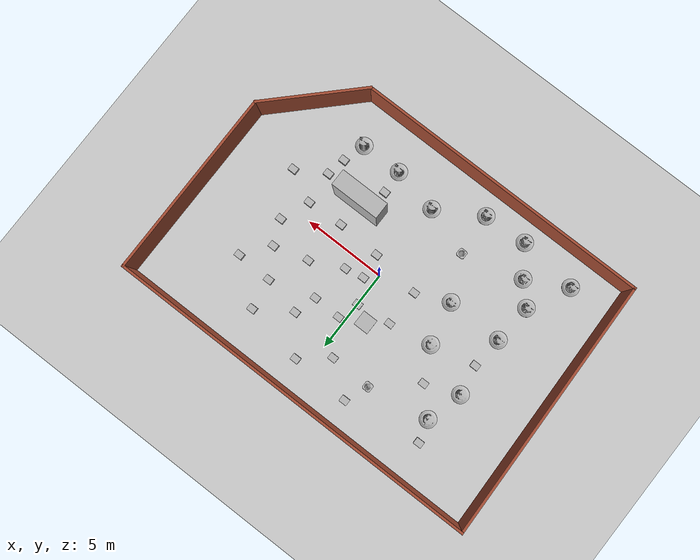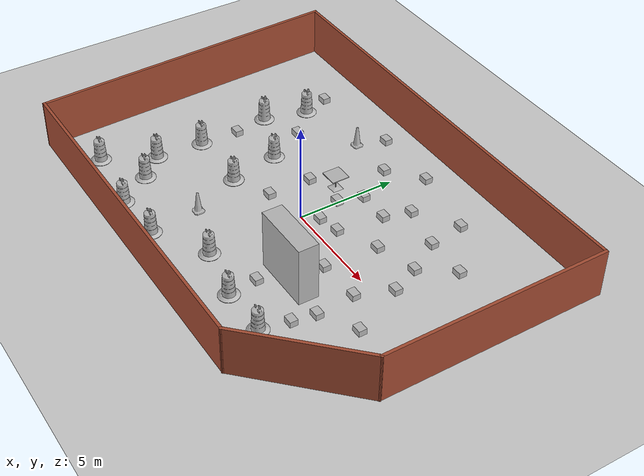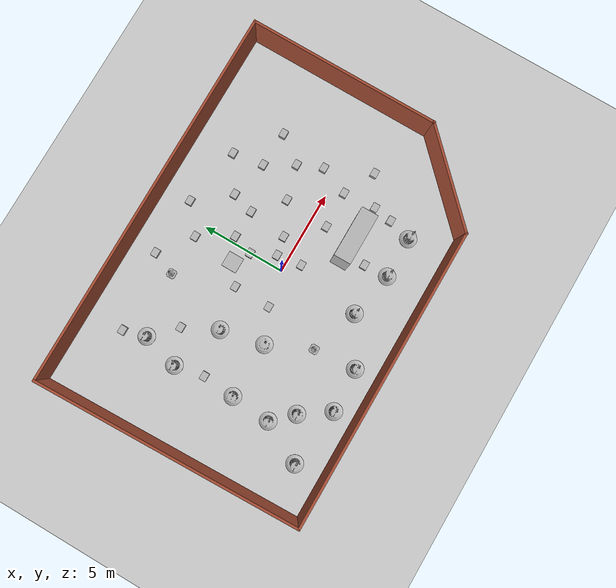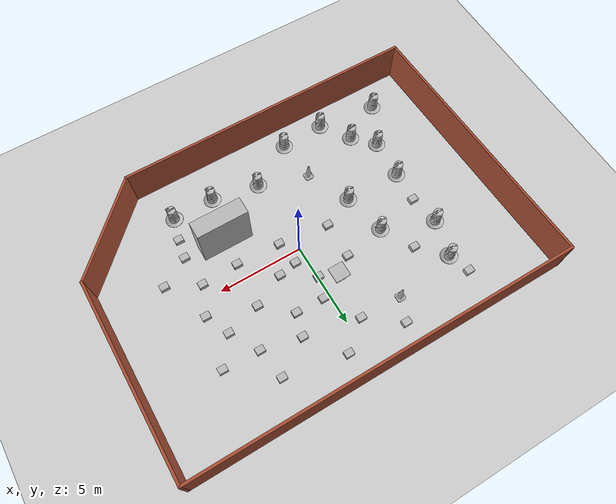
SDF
<sdf version="1.7">
 <world name="default">
  <light name="sun" type="directional">
   <pose>0 0 10 0 -0 0</pose>
   <diffuse>0.8 0.8 0.8 1</diffuse>
   <specular>0.2 0.2 0.2 1</specular>
   <attenuation>
    <range>1000</range>
    <constant>0.9</constant>
    <linear>0.01</linear>
    <quadratic>0.001</quadratic>
   </attenuation>
   <direction>-0.5 0.1 -0.9</direction>
   <spot><inner_angle>0</inner_angle><outer_angle>0</outer_angle><falloff>0</falloff></spot>
  </light>
  <model name="ground_plane">
   <static>1</static>
   <link name="link">
    <collision name="collision">
     <geometry><plane><normal>0 0 1</normal><size>100 100</size></plane></geometry>
     <surface>
      <contact><collide_bitmask>65535</collide_bitmask></contact>
      <friction><ode><mu>100</mu><mu2>50</mu2></ode></friction>
     </surface>
    </collision>
    <visual name="visual">
     <cast_shadows>0</cast_shadows>
     <geometry><plane><normal>0 0 1</normal><size>100 100</size></plane></geometry>
     <material>
      <script><uri>file://media/materials/scripts/gazebo.material</uri><name>Gazebo/Grey</name></script>
     </material>
    </visual>
   </link>
  </model>
  <gravity>0 0 -9.8</gravity>
  <magnetic_field>6e-06 2.3e-05 -4.2e-05</magnetic_field>
  <atmosphere type="adiabatic"/>
  <physics type="ode">
   <max_step_size>0.001</max_step_size>
   <real_time_factor>1</real_time_factor>
   <real_time_update_rate>1000</real_time_update_rate>
  </physics>
  <scene><ambient>0.4 0.4 0.4 1</ambient><background>0.7 0.7 0.7 1</background><shadows>1</shadows></scene>
  <spherical_coordinates>
   <surface_model>EARTH_WGS84</surface_model>
   <latitude_deg>0</latitude_deg>
   <longitude_deg>0</longitude_deg>
   <elevation>0</elevation>
   <heading_deg>0</heading_deg>
  </spherical_coordinates>
  <model name="small_room">
   <pose>-0.38646 0.24245 0 0 -0 0</pose>
   <link name="Wall_51">
    <collision name="Wall_51_Collision">
     <geometry><box><size>18 0.15 2.5</size></box></geometry>
     <pose>0 0 1.25 0 -0 0</pose>
    </collision>
    <visual name="Wall_51_Visual">
     <pose>0 0 1.25 0 -0 0</pose>
     <geometry><box><size>18 0.15 2.5</size></box></geometry>
     <material>
      <script><uri>file://media/materials/scripts/gazebo.material</uri><name>Gazebo/Bricks</name></script>
      <ambient>1 1 1 1</ambient>
     </material>
     <meta><layer>0</layer></meta>
    </visual>
    <pose>-2.00447 -7.90572 0 0 -0 0</pose>
   </link>
   <link name="Wall_52">
    <collision name="Wall_52_Collision">
     <geometry><box><size>6.5 0.15 2.5</size></box></geometry>
     <pose>0 0 1.25 0 -0 0</pose>
    </collision>
    <visual name="Wall_52_Visual">
     <pose>0 0 1.25 0 -0 0</pose>
     <geometry><box><size>6.5 0.15 2.5</size></box></geometry>
     <material>
      <script><uri>file://media/materials/scripts/gazebo.material</uri><name>Gazebo/Bricks</name></script>
      <ambient>1 1 1 1</ambient>
     </material>
     <meta><layer>0</layer></meta>
    </visual>
    <pose>9.16559 -5.66065 0 0 -0 0.785398</pose>
   </link>
   <link name="Wall_54">
    <collision name="Wall_54_Collision">
     <geometry><box><size>11.5 0.15 2.5</size></box></geometry>
     <pose>0 0 1.25 0 -0 0</pose>
    </collision>
    <visual name="Wall_54_Visual">
     <pose>0 0 1.25 0 -0 0</pose>
     <geometry><box><size>11.5 0.15 2.5</size></box></geometry>
     <material>
      <script><uri>file://media/materials/scripts/gazebo.material</uri><name>Gazebo/Bricks</name></script>
      <ambient>1 1 1 1</ambient>
     </material>
     <meta><layer>0</layer></meta>
    </visual>
    <pose>11.4107 2.25941 0 0 -0 1.5708</pose>
   </link>
   <link name="Wall_55">
    <collision name="Wall_55_Collision">
     <geometry><box><size>23 0.15 2.5</size></box></geometry>
     <pose>0 0 1.25 0 -0 0</pose>
    </collision>
    <visual name="Wall_55_Visual">
     <pose>0 0 1.25 0 -0 0</pose>
     <geometry><box><size>23 0.15 2.5</size></box></geometry>
     <material>
      <script><uri>file://media/materials/scripts/gazebo.material</uri><name>Gazebo/Bricks</name></script>
      <ambient>1 1 1 1</ambient>
     </material>
     <meta><layer>0</layer></meta>
    </visual>
    <pose>-0.014346 7.93441 0 0 -0 3.14159</pose>
   </link>
   <link name="Wall_56">
    <collision name="Wall_56_Collision">
     <geometry><box><size>15.9983 0.15 2.5</size></box></geometry>
     <pose>0 0 1.25 0 -0 0</pose>
    </collision>
    <visual name="Wall_56_Visual">
     <pose>0 0 1.25 0 -0 0</pose>
     <geometry><box><size>15.9983 0.15 2.5</size></box></geometry>
     <material>
      <script><uri>file://media/materials/scripts/gazebo.material</uri><name>Gazebo/Bricks</name></script>
      <ambient>1 1 1 1</ambient>
     </material>
     <meta><layer>0</layer></meta>
    </visual>
    <pose>-11.1844 0.014346 0 0 -0 -1.53862</pose>
   </link>
   <static>1</static>
  </model>
  <model name="brick_box_3x1x3">
   <static>1</static>
   <link name="chassis">
    <pose>0 0 1.5 0 -0 0</pose>
    <collision name="collision"><geometry><box><size>3 1 3</size></box></geometry></collision>
    <visual name="visual">
     <geometry><mesh><uri>model://brick_box_3x1x3/meshes/simple_box.dae</uri><scale>3 1 3</scale></mesh></geometry>
     <material>
      <script>
       <uri>model://brick_box_3x1x3/materials/scripts</uri>
       <uri>model://brick_box_3x1x3/materials/textures</uri>
       <name>BrickBox/Diffuse</name>
      </script>
     </material>
    </visual>
   </link>
   <pose>3.36244 -2.59922 0 0 -0 0</pose>
  </model>
  <model name="cardboard_box">
   <pose>3.67388 1.77519 0.149 0 -0 0</pose>
   <link name="link">
    <inertial>
     <mass>2</mass>
     <inertia>
      <ixx>0.0416667</ixx>
      <ixy>0</ixy>
      <ixz>0</ixz>
      <iyy>0.0566667</iyy>
      <iyz>0</iyz>
      <izz>0.0683333</izz>
     </inertia>
    </inertial>
    <collision name="collision">
     <geometry><box><size>0.5 0.4 0.3</size></box></geometry>
     <surface>
      <friction><ode><mu>1</mu><mu2>1</mu2></ode></friction>
      <contact><ode><kp>1e+07</kp><kd>1</kd><min_depth>0.001</min_depth><max_vel>0.1</max_vel></ode></contact>
     </surface>
    </collision>
    <visual name="visual">
     <pose>0 0 -0.15 0 -0 0</pose>
     <geometry>
      <mesh><uri>model://cardboard_box/meshes/cardboard_box.dae</uri><scale>1.25932 1.00745 0.755591</scale></mesh>
     </geometry>
    </visual>
   </link>
  </model>
  <model name="cardboard_box_clone">
   <pose>2.44939 4.51131 0.149 0 -0 0</pose>
   <link name="link">
    <inertial>
     <mass>2</mass>
     <inertia>
      <ixx>0.0416667</ixx>
      <ixy>0</ixy>
      <ixz>0</ixz>
      <iyy>0.0566667</iyy>
      <iyz>0</iyz>
      <izz>0.0683333</izz>
     </inertia>
    </inertial>
    <collision name="collision">
     <geometry><box><size>0.5 0.4 0.3</size></box></geometry>
     <surface>
      <friction><ode><mu>1</mu><mu2>1</mu2></ode></friction>
      <contact><ode><kp>1e+07</kp><kd>1</kd><min_depth>0.001</min_depth><max_vel>0.1</max_vel></ode></contact>
     </surface>
    </collision>
    <visual name="visual">
     <pose>0 0 -0.15 0 -0 0</pose>
     <geometry>
      <mesh><uri>model://cardboard_box/meshes/cardboard_box.dae</uri><scale>1.25932 1.00745 0.755591</scale></mesh>
     </geometry>
    </visual>
   </link>
  </model>
  <model name="cardboard_box_clone_0">
   <pose>-0.781206 5.20718 0.149 0 -0 0</pose>
   <link name="link">
    <inertial>
     <mass>2</mass>
     <inertia>
      <ixx>0.0416667</ixx>
      <ixy>0</ixy>
      <ixz>0</ixz>
      <iyy>0.0566667</iyy>
      <iyz>0</iyz>
      <izz>0.0683333</izz>
     </inertia>
    </inertial>
    <collision name="collision">
     <geometry><box><size>0.5 0.4 0.3</size></box></geometry>
     <surface>
      <friction><ode><mu>1</mu><mu2>1</mu2></ode></friction>
      <contact><ode><kp>1e+07</kp><kd>1</kd><min_depth>0.001</min_depth><max_vel>0.1</max_vel></ode></contact>
     </surface>
    </collision>
    <visual name="visual">
     <pose>0 0 -0.15 0 -0 0</pose>
     <geometry>
      <mesh><uri>model://cardboard_box/meshes/cardboard_box.dae</uri><scale>1.25932 1.00745 0.755591</scale></mesh>
     </geometry>
    </visual>
   </link>
  </model>
  <model name="cardboard_box_clone_1">
   <pose>6.91377 3.89397 0.149 0 -0 0</pose>
   <link name="link">
    <inertial>
     <mass>2</mass>
     <inertia>
      <ixx>0.0416667</ixx>
      <ixy>0</ixy>
      <ixz>0</ixz>
      <iyy>0.0566667</iyy>
      <iyz>0</iyz>
      <izz>0.0683333</izz>
     </inertia>
    </inertial>
    <collision name="collision">
     <geometry><box><size>0.5 0.4 0.3</size></box></geometry>
     <surface>
      <friction><ode><mu>1</mu><mu2>1</mu2></ode></friction>
      <contact><ode><kp>1e+07</kp><kd>1</kd><min_depth>0.001</min_depth><max_vel>0.1</max_vel></ode></contact>
     </surface>
    </collision>
    <visual name="visual">
     <pose>0 0 -0.15 0 -0 0</pose>
     <geometry>
      <mesh><uri>model://cardboard_box/meshes/cardboard_box.dae</uri><scale>1.25932 1.00745 0.755591</scale></mesh>
     </geometry>
    </visual>
   </link>
  </model>
  <model name="cardboard_box_clone_2">
   <pose>7.5452 -1.77727 0.149 0 -0 0</pose>
   <link name="link">
    <inertial>
     <mass>2</mass>
     <inertia>
      <ixx>0.0416667</ixx>
      <ixy>0</ixy>
      <ixz>0</ixz>
      <iyy>0.0566667</iyy>
      <iyz>0</iyz>
      <izz>0.0683333</izz>
     </inertia>
    </inertial>
    <collision name="collision">
     <geometry><box><size>0.5 0.4 0.3</size></box></geometry>
     <surface>
      <friction><ode><mu>1</mu><mu2>1</mu2></ode></friction>
      <contact><ode><kp>1e+07</kp><kd>1</kd><min_depth>0.001</min_depth><max_vel>0.1</max_vel></ode></contact>
     </surface>
    </collision>
    <visual name="visual">
     <pose>0 0 -0.15 0 -0 0</pose>
     <geometry>
      <mesh><uri>model://cardboard_box/meshes/cardboard_box.dae</uri><scale>1.25932 1.00745 0.755591</scale></mesh>
     </geometry>
    </visual>
   </link>
  </model>
  <model name="cafe_table">
   <static>1</static>
   <link name="link">
    <collision name="surface">
     <pose>0 0 0.755 0 -0 0</pose>
     <geometry><box><size>0.913 0.913 0.04</size></box></geometry>
    </collision>
    <collision name="column">
     <pose>0 0 0.37 0 -0 0</pose>
     <geometry><box><size>0.042 0.042 0.74</size></box></geometry>
    </collision>
    <collision name="base">
     <pose>0 0 0.02 0 -0 0</pose>
     <geometry><box><size>0.56 0.56 0.04</size></box></geometry>
    </collision>
    <visual name="visual">
     <geometry><mesh><uri>model://cafe_table/meshes/cafe_table.dae</uri></mesh></geometry>
    </visual>
   </link>
   <pose>-1.01377 2.56002 0 0 -0 0</pose>
  </model>
  <model name="Construction Cone">
   <link name="link">
    <collision name="collision">
     <geometry>
      <mesh><scale>10 10 10</scale><uri>model://construction_cone/meshes/construction_cone.dae</uri></mesh>
     </geometry>
    </collision>
    <visual name="visual">
     <geometry>
      <mesh><scale>10 10 10</scale><uri>model://construction_cone/meshes/construction_cone.dae</uri></mesh>
     </geometry>
    </visual>
    <inertial>
     <inertia><ixx>1</ixx><ixy>0</ixy><ixz>0</ixz><iyy>1</iyy><iyz>0</iyz><izz>1</izz></inertia>
     <mass>1</mass>
    </inertial>
   </link>
   <pose>-3.27852 5.28497 -0 0 -0 0</pose>
  </model>
  <model name="Construction Barrel">
   <link name="link">
    <inertial>
     <pose>0 0 0.4 0 -0 0</pose>
     <mass>500</mass>
     <inertia><ixx>51.2096</ixx><iyy>51.2096</iyy><izz>25</izz><ixy>0</ixy><ixz>0</ixz><iyz>0</iyz></inertia>
    </inertial>
    <collision name="collision">
     <geometry><mesh><uri>model://construction_barrel/meshes/construction_barrel.dae</uri></mesh></geometry>
    </collision>
    <visual name="visual">
     <geometry><mesh><uri>model://construction_barrel/meshes/construction_barrel.dae</uri></mesh></geometry>
    </visual>
   </link>
   <pose>-4.61396 1.29782 0 0 0 -4.5e-05</pose>
  </model>
  <model name="Construction Barrel_clone">
   <link name="link">
    <inertial>
     <pose>0 0 0.4 0 -0 0</pose>
     <mass>500</mass>
     <inertia><ixx>51.2096</ixx><iyy>51.2096</iyy><izz>25</izz><ixy>0</ixy><ixz>0</ixz><iyz>0</iyz></inertia>
    </inertial>
    <collision name="collision">
     <geometry><mesh><uri>model://construction_barrel/meshes/construction_barrel.dae</uri></mesh></geometry>
    </collision>
    <visual name="visual">
     <geometry><mesh><uri>model://construction_barrel/meshes/construction_barrel.dae</uri></mesh></geometry>
    </visual>
   </link>
   <pose>-7.60006 -3.60372 -0 0 -0 -4.6e-05</pose>
  </model>
  <model name="Construction Cone_clone">
   <link name="link">
    <collision name="collision">
     <geometry>
      <mesh><scale>10 10 10</scale><uri>model://construction_cone/meshes/construction_cone.dae</uri></mesh>
     </geometry>
    </collision>
    <visual name="visual">
     <geometry>
      <mesh><scale>10 10 10</scale><uri>model://construction_cone/meshes/construction_cone.dae</uri></mesh>
     </geometry>
    </visual>
    <inertial>
     <inertia><ixx>1</ixx><ixy>0</ixy><ixz>0</ixz><iyy>1</iyy><iyz>0</iyz><izz>1</izz></inertia>
     <mass>1</mass>
    </inertial>
   </link>
   <pose>-2.87865 -3.82249 -1e-06 2e-06 2e-06 0</pose>
  </model>
  <model name="Construction Barrel_clone_0">
   <link name="link">
    <inertial>
     <pose>0 0 0.4 0 -0 0</pose>
     <mass>500</mass>
     <inertia><ixx>51.2096</ixx><iyy>51.2096</iyy><izz>25</izz><ixy>0</ixy><ixz>0</ixz><iyz>0</iyz></inertia>
    </inertial>
    <collision name="collision">
     <geometry><mesh><uri>model://construction_barrel/meshes/construction_barrel.dae</uri></mesh></geometry>
    </collision>
    <visual name="visual">
     <geometry><mesh><uri>model://construction_barrel/meshes/construction_barrel.dae</uri></mesh></geometry>
    </visual>
   </link>
   <pose>-4.06866 -1.27964 -0 0 0 -4.4e-05</pose>
  </model>
  <model name="Construction Barrel_clone_1">
   <link name="link">
    <inertial>
     <pose>0 0 0.4 0 -0 0</pose>
     <mass>500</mass>
     <inertia><ixx>51.2096</ixx><iyy>51.2096</iyy><izz>25</izz><ixy>0</ixy><ixz>0</ixz><iyz>0</iyz></inertia>
    </inertial>
    <collision name="collision">
     <geometry><mesh><uri>model://construction_barrel/meshes/construction_barrel.dae</uri></mesh></geometry>
    </collision>
    <visual name="visual">
     <geometry><mesh><uri>model://construction_barrel/meshes/construction_barrel.dae</uri></mesh></geometry>
    </visual>
   </link>
   <pose>-7.61053 2.48117 -0 0 -0 -4.6e-05</pose>
  </model>
  <model name="Construction Barrel_clone_2">
   <link name="link">
    <inertial>
     <pose>0 0 0.4 0 -0 0</pose>
     <mass>500</mass>
     <inertia><ixx>51.2096</ixx><iyy>51.2096</iyy><izz>25</izz><ixy>0</ixy><ixz>0</ixz><iyz>0</iyz></inertia>
    </inertial>
    <collision name="collision">
     <geometry><mesh><uri>model://construction_barrel/meshes/construction_barrel.dae</uri></mesh></geometry>
    </collision>
    <visual name="visual">
     <geometry><mesh><uri>model://construction_barrel/meshes/construction_barrel.dae</uri></mesh></geometry>
    </visual>
   </link>
   <pose>-7.01817 4.65789 -1e-06 3e-06 7e-06 -4e-05</pose>
  </model>
  <model name="Construction Barrel_clone_3">
   <link name="link">
    <inertial>
     <pose>0 0 0.4 0 -0 0</pose>
     <mass>500</mass>
     <inertia><ixx>51.2096</ixx><iyy>51.2096</iyy><izz>25</izz><ixy>0</ixy><ixz>0</ixz><iyz>0</iyz></inertia>
    </inertial>
    <collision name="collision">
     <geometry><mesh><uri>model://construction_barrel/meshes/construction_barrel.dae</uri></mesh></geometry>
    </collision>
    <visual name="visual">
     <geometry><mesh><uri>model://construction_barrel/meshes/construction_barrel.dae</uri></mesh></geometry>
    </visual>
   </link>
   <pose>-7.43391 -1.22174 0 0 0 -4.3e-05</pose>
  </model>
  <model name="Construction Barrel_clone_4">
   <link name="link">
    <inertial>
     <pose>0 0 0.4 0 -0 0</pose>
     <mass>500</mass>
     <inertia><ixx>51.2096</ixx><iyy>51.2096</iyy><izz>25</izz><ixy>0</ixy><ixz>0</ixz><iyz>0</iyz></inertia>
    </inertial>
    <collision name="collision">
     <geometry><mesh><uri>model://construction_barrel/meshes/construction_barrel.dae</uri></mesh></geometry>
    </collision>
    <visual name="visual">
     <geometry><mesh><uri>model://construction_barrel/meshes/construction_barrel.dae</uri></mesh></geometry>
    </visual>
   </link>
   <pose>-6.46845 -4.78815 0 0 0 -4e-05</pose>
  </model>
  <model name="Construction Barrel_clone_5">
   <link name="link">
    <inertial>
     <pose>0 0 0.4 0 -0 0</pose>
     <mass>500</mass>
     <inertia><ixx>51.2096</ixx><iyy>51.2096</iyy><izz>25</izz><ixy>0</ixy><ixz>0</ixz><iyz>0</iyz></inertia>
    </inertial>
    <collision name="collision">
     <geometry><mesh><uri>model://construction_barrel/meshes/construction_barrel.dae</uri></mesh></geometry>
    </collision>
    <visual name="visual">
     <geometry><mesh><uri>model://construction_barrel/meshes/construction_barrel.dae</uri></mesh></geometry>
    </visual>
   </link>
   <pose>-8.85933 -6.04505 -1e-06 3e-06 7e-06 -3.9e-05</pose>
  </model>
  <model name="Construction Barrel_clone_6">
   <link name="link">
    <inertial>
     <pose>0 0 0.4 0 -0 0</pose>
     <mass>500</mass>
     <inertia><ixx>51.2096</ixx><iyy>51.2096</iyy><izz>25</izz><ixy>0</ixy><ixz>0</ixz><iyz>0</iyz></inertia>
    </inertial>
    <collision name="collision">
     <geometry><mesh><uri>model://construction_barrel/meshes/construction_barrel.dae</uri></mesh></geometry>
    </collision>
    <visual name="visual">
     <geometry><mesh><uri>model://construction_barrel/meshes/construction_barrel.dae</uri></mesh></geometry>
    </visual>
   </link>
   <pose>-5.29964 -6.48909 -2e-06 7e-06 -2e-06 -4.2e-05</pose>
  </model>
  <model name="Construction Barrel_clone_7">
   <link name="link">
    <inertial>
     <pose>0 0 0.4 0 -0 0</pose>
     <mass>500</mass>
     <inertia><ixx>51.2096</ixx><iyy>51.2096</iyy><izz>25</izz><ixy>0</ixy><ixz>0</ixz><iyz>0</iyz></inertia>
    </inertial>
    <collision name="collision">
     <geometry><mesh><uri>model://construction_barrel/meshes/construction_barrel.dae</uri></mesh></geometry>
    </collision>
    <visual name="visual">
     <geometry><mesh><uri>model://construction_barrel/meshes/construction_barrel.dae</uri></mesh></geometry>
    </visual>
   </link>
   <pose>-2.67378 -6.3557 -0 0 -0 -4.4e-05</pose>
  </model>
  <model name="Construction Barrel_clone_8">
   <link name="link">
    <inertial>
     <pose>0 0 0.4 0 -0 0</pose>
     <mass>500</mass>
     <inertia><ixx>51.2096</ixx><iyy>51.2096</iyy><izz>25</izz><ixy>0</ixy><ixz>0</ixz><iyz>0</iyz></inertia>
    </inertial>
    <collision name="collision">
     <geometry><mesh><uri>model://construction_barrel/meshes/construction_barrel.dae</uri></mesh></geometry>
    </collision>
    <visual name="visual">
     <geometry><mesh><uri>model://construction_barrel/meshes/construction_barrel.dae</uri></mesh></geometry>
    </visual>
   </link>
   <pose>2.76625 -5.33223 -1e-06 3e-06 7e-06 -4.5e-05</pose>
  </model>
  <model name="Construction Barrel_clone_9">
   <link name="link">
    <inertial>
     <pose>0 0 0.4 0 -0 0</pose>
     <mass>500</mass>
     <inertia><ixx>51.2096</ixx><iyy>51.2096</iyy><izz>25</izz><ixy>0</ixy><ixz>0</ixz><iyz>0</iyz></inertia>
    </inertial>
    <collision name="collision">
     <geometry><mesh><uri>model://construction_barrel/meshes/construction_barrel.dae</uri></mesh></geometry>
    </collision>
    <visual name="visual">
     <geometry><mesh><uri>model://construction_barrel/meshes/construction_barrel.dae</uri></mesh></geometry>
    </visual>
   </link>
   <pose>0.002045 -4.78774 -1e-06 -3e-06 -1e-06 -5.2e-05</pose>
  </model>
  <model name="Construction Barrel_clone_10">
   <link name="link">
    <inertial>
     <pose>0 0 0.4 0 -0 0</pose>
     <mass>500</mass>
     <inertia><ixx>51.2096</ixx><iyy>51.2096</iyy><izz>25</izz><ixy>0</ixy><ixz>0</ixz><iyz>0</iyz></inertia>
    </inertial>
    <collision name="collision">
     <geometry><mesh><uri>model://construction_barrel/meshes/construction_barrel.dae</uri></mesh></geometry>
    </collision>
    <visual name="visual">
     <geometry><mesh><uri>model://construction_barrel/meshes/construction_barrel.dae</uri></mesh></geometry>
    </visual>
   </link>
   <pose>5.23673 -5.31242 -0 0 -0 -5e-05</pose>
  </model>
  <model name="cardboard_box_clone_3">
   <pose>1.74828 0.862263 0.149 0 -0 0</pose>
   <link name="link">
    <inertial>
     <mass>2</mass>
     <inertia>
      <ixx>0.0416667</ixx>
      <ixy>0</ixy>
      <ixz>0</ixz>
      <iyy>0.0566667</iyy>
      <iyz>0</iyz>
      <izz>0.0683333</izz>
     </inertia>
    </inertial>
    <collision name="collision">
     <geometry><box><size>0.5 0.4 0.3</size></box></geometry>
     <surface>
      <friction><ode><mu>1</mu><mu2>1</mu2></ode></friction>
      <contact><ode><kp>1e+07</kp><kd>1</kd><min_depth>0.001</min_depth><max_vel>0.1</max_vel></ode></contact>
     </surface>
    </collision>
    <visual name="visual">
     <pose>0 0 -0.15 0 -0 0</pose>
     <geometry>
      <mesh><uri>model://cardboard_box/meshes/cardboard_box.dae</uri><scale>1.25932 1.00745 0.755591</scale></mesh>
     </geometry>
    </visual>
   </link>
  </model>
  <model name="cardboard_box_clone_4">
   <pose>0.843336 -0.814201 0.149 0 -0 0</pose>
   <link name="link">
    <inertial>
     <mass>2</mass>
     <inertia>
      <ixx>0.0416667</ixx>
      <ixy>0</ixy>
      <ixz>0</ixz>
      <iyy>0.0566667</iyy>
      <iyz>0</iyz>
      <izz>0.0683333</izz>
     </inertia>
    </inertial>
    <collision name="collision">
     <geometry><box><size>0.5 0.4 0.3</size></box></geometry>
     <surface>
      <friction><ode><mu>1</mu><mu2>1</mu2></ode></friction>
      <contact><ode><kp>1e+07</kp><kd>1</kd><min_depth>0.001</min_depth><max_vel>0.1</max_vel></ode></contact>
     </surface>
    </collision>
    <visual name="visual">
     <pose>0 0 -0.15 0 -0 0</pose>
     <geometry>
      <mesh><uri>model://cardboard_box/meshes/cardboard_box.dae</uri><scale>1.25932 1.00745 0.755591</scale></mesh>
     </geometry>
    </visual>
   </link>
  </model>
  <model name="cardboard_box_clone_5">
   <pose>2.05163 3.18818 0.149 0 -0 0</pose>
   <link name="link">
    <inertial>
     <mass>2</mass>
     <inertia>
      <ixx>0.0416667</ixx>
      <ixy>0</ixy>
      <ixz>0</ixz>
      <iyy>0.0566667</iyy>
      <iyz>0</iyz>
      <izz>0.0683333</izz>
     </inertia>
    </inertial>
    <collision name="collision">
     <geometry><box><size>0.5 0.4 0.3</size></box></geometry>
     <surface>
      <friction><ode><mu>1</mu><mu2>1</mu2></ode></friction>
      <contact><ode><kp>1e+07</kp><kd>1</kd><min_depth>0.001</min_depth><max_vel>0.1</max_vel></ode></contact>
     </surface>
    </collision>
    <visual name="visual">
     <pose>0 0 -0.15 0 -0 0</pose>
     <geometry>
      <mesh><uri>model://cardboard_box/meshes/cardboard_box.dae</uri><scale>1.25932 1.00745 0.755591</scale></mesh>
     </geometry>
    </visual>
   </link>
  </model>
  <model name="cardboard_box_clone_6">
   <pose>4.46747 5.82617 0.149 0 -0 0</pose>
   <link name="link">
    <inertial>
     <mass>2</mass>
     <inertia>
      <ixx>0.0416667</ixx>
      <ixy>0</ixy>
      <ixz>0</ixz>
      <iyy>0.0566667</iyy>
      <iyz>0</iyz>
      <izz>0.0683333</izz>
     </inertia>
    </inertial>
    <collision name="collision">
     <geometry><box><size>0.5 0.4 0.3</size></box></geometry>
     <surface>
      <friction><ode><mu>1</mu><mu2>1</mu2></ode></friction>
      <contact><ode><kp>1e+07</kp><kd>1</kd><min_depth>0.001</min_depth><max_vel>0.1</max_vel></ode></contact>
     </surface>
    </collision>
    <visual name="visual">
     <pose>0 0 -0.15 0 -0 0</pose>
     <geometry>
      <mesh><uri>model://cardboard_box/meshes/cardboard_box.dae</uri><scale>1.25932 1.00745 0.755591</scale></mesh>
     </geometry>
    </visual>
   </link>
  </model>
  <model name="cardboard_box_clone_7">
   <pose>5.66285 -0.840519 0.149 0 -0 0</pose>
   <link name="link">
    <inertial>
     <mass>2</mass>
     <inertia>
      <ixx>0.0416667</ixx>
      <ixy>0</ixy>
      <ixz>0</ixz>
      <iyy>0.0566667</iyy>
      <iyz>0</iyz>
      <izz>0.0683333</izz>
     </inertia>
    </inertial>
    <collision name="collision">
     <geometry><box><size>0.5 0.4 0.3</size></box></geometry>
     <surface>
      <friction><ode><mu>1</mu><mu2>1</mu2></ode></friction>
      <contact><ode><kp>1e+07</kp><kd>1</kd><min_depth>0.001</min_depth><max_vel>0.1</max_vel></ode></contact>
     </surface>
    </collision>
    <visual name="visual">
     <pose>0 0 -0.15 0 -0 0</pose>
     <geometry>
      <mesh><uri>model://cardboard_box/meshes/cardboard_box.dae</uri><scale>1.25932 1.00745 0.755591</scale></mesh>
     </geometry>
    </visual>
   </link>
  </model>
  <model name="cardboard_box_clone_8">
   <pose>6.34875 0.88162 0.149 0 -0 0</pose>
   <link name="link">
    <inertial>
     <mass>2</mass>
     <inertia>
      <ixx>0.0416667</ixx>
      <ixy>0</ixy>
      <ixz>0</ixz>
      <iyy>0.0566667</iyy>
      <iyz>0</iyz>
      <izz>0.0683333</izz>
     </inertia>
    </inertial>
    <collision name="collision">
     <geometry><box><size>0.5 0.4 0.3</size></box></geometry>
     <surface>
      <friction><ode><mu>1</mu><mu2>1</mu2></ode></friction>
      <contact><ode><kp>1e+07</kp><kd>1</kd><min_depth>0.001</min_depth><max_vel>0.1</max_vel></ode></contact>
     </surface>
    </collision>
    <visual name="visual">
     <pose>0 0 -0.15 0 -0 0</pose>
     <geometry>
      <mesh><uri>model://cardboard_box/meshes/cardboard_box.dae</uri><scale>1.25932 1.00745 0.755591</scale></mesh>
     </geometry>
    </visual>
   </link>
  </model>
  <model name="cardboard_box_clone_9">
   <pose>5.72264 2.33019 0.149 0 -0 0</pose>
   <link name="link">
    <inertial>
     <mass>2</mass>
     <inertia>
      <ixx>0.0416667</ixx>
      <ixy>0</ixy>
      <ixz>0</ixz>
      <iyy>0.0566667</iyy>
      <iyz>0</iyz>
      <izz>0.0683333</izz>
     </inertia>
    </inertial>
    <collision name="collision">
     <geometry><box><size>0.5 0.4 0.3</size></box></geometry>
     <surface>
      <friction><ode><mu>1</mu><mu2>1</mu2></ode></friction>
      <contact><ode><kp>1e+07</kp><kd>1</kd><min_depth>0.001</min_depth><max_vel>0.1</max_vel></ode></contact>
     </surface>
    </collision>
    <visual name="visual">
     <pose>0 0 -0.15 0 -0 0</pose>
     <geometry>
      <mesh><uri>model://cardboard_box/meshes/cardboard_box.dae</uri><scale>1.25932 1.00745 0.755591</scale></mesh>
     </geometry>
    </visual>
   </link>
  </model>
  <model name="cardboard_box_clone_10">
   <pose>5.81393 -2.78224 0.149 0 -0 0</pose>
   <link name="link">
    <inertial>
     <mass>2</mass>
     <inertia>
      <ixx>0.0416667</ixx>
      <ixy>0</ixy>
      <ixz>0</ixz>
      <iyy>0.0566667</iyy>
      <iyz>0</iyz>
      <izz>0.0683333</izz>
     </inertia>
    </inertial>
    <collision name="collision">
     <geometry><box><size>0.5 0.4 0.3</size></box></geometry>
     <surface>
      <friction><ode><mu>1</mu><mu2>1</mu2></ode></friction>
      <contact><ode><kp>1e+07</kp><kd>1</kd><min_depth>0.001</min_depth><max_vel>0.1</max_vel></ode></contact>
     </surface>
    </collision>
    <visual name="visual">
     <pose>0 0 -0.15 0 -0 0</pose>
     <geometry>
      <mesh><uri>model://cardboard_box/meshes/cardboard_box.dae</uri><scale>1.25932 1.00745 0.755591</scale></mesh>
     </geometry>
    </visual>
   </link>
  </model>
  <model name="cardboard_box_clone_11">
   <pose>4.74903 3.98576 0.149 0 -0 0</pose>
   <link name="link">
    <inertial>
     <mass>2</mass>
     <inertia>
      <ixx>0.0416667</ixx>
      <ixy>0</ixy>
      <ixz>0</ixz>
      <iyy>0.0566667</iyy>
      <iyz>0</iyz>
      <izz>0.0683333</izz>
     </inertia>
    </inertial>
    <collision name="collision">
     <geometry><box><size>0.5 0.4 0.3</size></box></geometry>
     <surface>
      <friction><ode><mu>1</mu><mu2>1</mu2></ode></friction>
      <contact><ode><kp>1e+07</kp><kd>1</kd><min_depth>0.001</min_depth><max_vel>0.1</max_vel></ode></contact>
     </surface>
    </collision>
    <visual name="visual">
     <pose>0 0 -0.15 0 -0 0</pose>
     <geometry>
      <mesh><uri>model://cardboard_box/meshes/cardboard_box.dae</uri><scale>1.25932 1.00745 0.755591</scale></mesh>
     </geometry>
    </visual>
   </link>
  </model>
  <model name="cardboard_box_clone_12">
   <pose>0.832375 6.52163 0.149 0 -0 0</pose>
   <link name="link">
    <inertial>
     <mass>2</mass>
     <inertia>
      <ixx>0.0416667</ixx>
      <ixy>0</ixy>
      <ixz>0</ixz>
      <iyy>0.0566667</iyy>
      <iyz>0</iyz>
      <izz>0.0683333</izz>
     </inertia>
    </inertial>
    <collision name="collision">
     <geometry><box><size>0.5 0.4 0.3</size></box></geometry>
     <surface>
      <friction><ode><mu>1</mu><mu2>1</mu2></ode></friction>
      <contact><ode><kp>1e+07</kp><kd>1</kd><min_depth>0.001</min_depth><max_vel>0.1</max_vel></ode></contact>
     </surface>
    </collision>
    <visual name="visual">
     <pose>0 0 -0.15 0 -0 0</pose>
     <geometry>
      <mesh><uri>model://cardboard_box/meshes/cardboard_box.dae</uri><scale>1.25932 1.00745 0.755591</scale></mesh>
     </geometry>
    </visual>
   </link>
  </model>
  <model name="cardboard_box_clone_13">
   <pose>-2.71875 6.6629 0.149 0 -0 0</pose>
   <link name="link">
    <inertial>
     <mass>2</mass>
     <inertia>
      <ixx>0.0416667</ixx>
      <ixy>0</ixy>
      <ixz>0</ixz>
      <iyy>0.0566667</iyy>
      <iyz>0</iyz>
      <izz>0.0683333</izz>
     </inertia>
    </inertial>
    <collision name="collision">
     <geometry><box><size>0.5 0.4 0.3</size></box></geometry>
     <surface>
      <friction><ode><mu>1</mu><mu2>1</mu2></ode></friction>
      <contact><ode><kp>1e+07</kp><kd>1</kd><min_depth>0.001</min_depth><max_vel>0.1</max_vel></ode></contact>
     </surface>
    </collision>
    <visual name="visual">
     <pose>0 0 -0.15 0 -0 0</pose>
     <geometry>
      <mesh><uri>model://cardboard_box/meshes/cardboard_box.dae</uri><scale>1.25932 1.00745 0.755591</scale></mesh>
     </geometry>
    </visual>
   </link>
  </model>
  <model name="cardboard_box_clone_14">
   <pose>-2.0885 1.78248 0.149 0 -0 0</pose>
   <link name="link">
    <inertial>
     <mass>2</mass>
     <inertia>
      <ixx>0.0416667</ixx>
      <ixy>0</ixy>
      <ixz>0</ixz>
      <iyy>0.0566667</iyy>
      <iyz>0</iyz>
      <izz>0.0683333</izz>
     </inertia>
    </inertial>
    <collision name="collision">
     <geometry><box><size>0.5 0.4 0.3</size></box></geometry>
     <surface>
      <friction><ode><mu>1</mu><mu2>1</mu2></ode></friction>
      <contact><ode><kp>1e+07</kp><kd>1</kd><min_depth>0.001</min_depth><max_vel>0.1</max_vel></ode></contact>
     </surface>
    </collision>
    <visual name="visual">
     <pose>0 0 -0.15 0 -0 0</pose>
     <geometry>
      <mesh><uri>model://cardboard_box/meshes/cardboard_box.dae</uri><scale>1.25932 1.00745 0.755591</scale></mesh>
     </geometry>
    </visual>
   </link>
  </model>
  <model name="cardboard_box_clone_15">
   <pose>-5.60492 3.24797 0.149 0 -0 0</pose>
   <link name="link">
    <inertial>
     <mass>2</mass>
     <inertia>
      <ixx>0.0416667</ixx>
      <ixy>0</ixy>
      <ixz>0</ixz>
      <iyy>0.0566667</iyy>
      <iyz>0</iyz>
      <izz>0.0683333</izz>
     </inertia>
    </inertial>
    <collision name="collision">
     <geometry><box><size>0.5 0.4 0.3</size></box></geometry>
     <surface>
      <friction><ode><mu>1</mu><mu2>1</mu2></ode></friction>
      <contact><ode><kp>1e+07</kp><kd>1</kd><min_depth>0.001</min_depth><max_vel>0.1</max_vel></ode></contact>
     </surface>
    </collision>
    <visual name="visual">
     <pose>0 0 -0.15 0 -0 0</pose>
     <geometry>
      <mesh><uri>model://cardboard_box/meshes/cardboard_box.dae</uri><scale>1.25932 1.00745 0.755591</scale></mesh>
     </geometry>
    </visual>
   </link>
  </model>
  <model name="cardboard_box_clone_16">
   <pose>-7.38563 5.97796 0.149 0 -0 0</pose>
   <link name="link">
    <inertial>
     <mass>2</mass>
     <inertia>
      <ixx>0.0416667</ixx>
      <ixy>0</ixy>
      <ixz>0</ixz>
      <iyy>0.0566667</iyy>
      <iyz>0</iyz>
      <izz>0.0683333</izz>
     </inertia>
    </inertial>
    <collision name="collision">
     <geometry><box><size>0.5 0.4 0.3</size></box></geometry>
     <surface>
      <friction><ode><mu>1</mu><mu2>1</mu2></ode></friction>
      <contact><ode><kp>1e+07</kp><kd>1</kd><min_depth>0.001</min_depth><max_vel>0.1</max_vel></ode></contact>
     </surface>
    </collision>
    <visual name="visual">
     <pose>0 0 -0.15 0 -0 0</pose>
     <geometry>
      <mesh><uri>model://cardboard_box/meshes/cardboard_box.dae</uri><scale>1.25932 1.00745 0.755591</scale></mesh>
     </geometry>
    </visual>
   </link>
  </model>
  <model name="cardboard_box_clone_17">
   <pose>-2.12603 -0.41843 0.149 0 -0 0</pose>
   <link name="link">
    <inertial>
     <mass>2</mass>
     <inertia>
      <ixx>0.0416667</ixx>
      <ixy>0</ixy>
      <ixz>0</ixz>
      <iyy>0.0566667</iyy>
      <iyz>0</iyz>
      <izz>0.0683333</izz>
     </inertia>
    </inertial>
    <collision name="collision">
     <geometry><box><size>0.5 0.4 0.3</size></box></geometry>
     <surface>
      <friction><ode><mu>1</mu><mu2>1</mu2></ode></friction>
      <contact><ode><kp>1e+07</kp><kd>1</kd><min_depth>0.001</min_depth><max_vel>0.1</max_vel></ode></contact>
     </surface>
    </collision>
    <visual name="visual">
     <pose>0 0 -0.15 0 -0 0</pose>
     <geometry>
      <mesh><uri>model://cardboard_box/meshes/cardboard_box.dae</uri><scale>1.25932 1.00745 0.755591</scale></mesh>
     </geometry>
    </visual>
   </link>
  </model>
  <model name="cardboard_box_clone_18">
   <pose>-7.26698 0.707377 0.149 0 -0 0</pose>
   <link name="link">
    <inertial>
     <mass>2</mass>
     <inertia>
      <ixx>0.0416667</ixx>
      <ixy>0</ixy>
      <ixz>0</ixz>
      <iyy>0.0566667</iyy>
      <iyz>0</iyz>
      <izz>0.0683333</izz>
     </inertia>
    </inertial>
    <collision name="collision">
     <geometry><box><size>0.5 0.4 0.3</size></box></geometry>
     <surface>
      <friction><ode><mu>1</mu><mu2>1</mu2></ode></friction>
      <contact><ode><kp>1e+07</kp><kd>1</kd><min_depth>0.001</min_depth><max_vel>0.1</max_vel></ode></contact>
     </surface>
    </collision>
    <visual name="visual">
     <pose>0 0 -0.15 0 -0 0</pose>
     <geometry>
      <mesh><uri>model://cardboard_box/meshes/cardboard_box.dae</uri><scale>1.25932 1.00745 0.755591</scale></mesh>
     </geometry>
    </visual>
   </link>
  </model>
  <model name="cardboard_box_clone_19">
   <pose>0.639113 0.65189 0.149 0 -0 0</pose>
   <link name="link">
    <inertial>
     <mass>2</mass>
     <inertia>
      <ixx>0.0416667</ixx>
      <ixy>0</ixy>
      <ixz>0</ixz>
      <iyy>0.0566667</iyy>
      <iyz>0</iyz>
      <izz>0.0683333</izz>
     </inertia>
    </inertial>
    <collision name="collision">
     <geometry><box><size>0.5 0.4 0.3</size></box></geometry>
     <surface>
      <friction><ode><mu>1</mu><mu2>1</mu2></ode></friction>
      <contact><ode><kp>1e+07</kp><kd>1</kd><min_depth>0.001</min_depth><max_vel>0.1</max_vel></ode></contact>
     </surface>
    </collision>
    <visual name="visual">
     <pose>0 0 -0.15 0 -0 0</pose>
     <geometry>
      <mesh><uri>model://cardboard_box/meshes/cardboard_box.dae</uri><scale>1.25932 1.00745 0.755591</scale></mesh>
     </geometry>
    </visual>
   </link>
  </model>
  <model name="cardboard_box_clone_20">
   <pose>-0.030546 2.02253 0.149 0 -0 0</pose>
   <link name="link">
    <inertial>
     <mass>2</mass>
     <inertia>
      <ixx>0.0416667</ixx>
      <ixy>0</ixy>
      <ixz>0</ixz>
      <iyy>0.0566667</iyy>
      <iyz>0</iyz>
      <izz>0.0683333</izz>
     </inertia>
    </inertial>
    <collision name="collision">
     <geometry><box><size>0.5 0.4 0.3</size></box></geometry>
     <surface>
      <friction><ode><mu>1</mu><mu2>1</mu2></ode></friction>
      <contact><ode><kp>1e+07</kp><kd>1</kd><min_depth>0.001</min_depth><max_vel>0.1</max_vel></ode></contact>
     </surface>
    </collision>
    <visual name="visual">
     <pose>0 0 -0.15 0 -0 0</pose>
     <geometry>
      <mesh><uri>model://cardboard_box/meshes/cardboard_box.dae</uri><scale>1.25932 1.00745 0.755591</scale></mesh>
     </geometry>
    </visual>
   </link>
  </model>
  <model name="cardboard_box_clone_21">
   <pose>0.376227 3.23862 0.149 0 -0 0</pose>
   <link name="link">
    <inertial>
     <mass>2</mass>
     <inertia>
      <ixx>0.0416667</ixx>
      <ixy>0</ixy>
      <ixz>0</ixz>
      <iyy>0.0566667</iyy>
      <iyz>0</iyz>
      <izz>0.0683333</izz>
     </inertia>
    </inertial>
    <collision name="collision">
     <geometry><box><size>0.5 0.4 0.3</size></box></geometry>
     <surface>
      <friction><ode><mu>1</mu><mu2>1</mu2></ode></friction>
      <contact><ode><kp>1e+07</kp><kd>1</kd><min_depth>0.001</min_depth><max_vel>0.1</max_vel></ode></contact>
     </surface>
    </collision>
    <visual name="visual">
     <pose>0 0 -0.15 0 -0 0</pose>
     <geometry>
      <mesh><uri>model://cardboard_box/meshes/cardboard_box.dae</uri><scale>1.25932 1.00745 0.755591</scale></mesh>
     </geometry>
    </visual>
   </link>
  </model>
  <model name="cardboard_box_clone_22">
   <pose>2.6541 -3.89083 0.149 0 -0 0</pose>
   <link name="link">
    <inertial>
     <mass>2</mass>
     <inertia>
      <ixx>0.0416667</ixx>
      <ixy>0</ixy>
      <ixz>0</ixz>
      <iyy>0.0566667</iyy>
      <iyz>0</iyz>
      <izz>0.0683333</izz>
     </inertia>
    </inertial>
    <collision name="collision">
     <geometry><box><size>0.5 0.4 0.3</size></box></geometry>
     <surface>
      <friction><ode><mu>1</mu><mu2>1</mu2></ode></friction>
      <contact><ode><kp>1e+07</kp><kd>1</kd><min_depth>0.001</min_depth><max_vel>0.1</max_vel></ode></contact>
     </surface>
    </collision>
    <visual name="visual">
     <pose>0 0 -0.15 0 -0 0</pose>
     <geometry>
      <mesh><uri>model://cardboard_box/meshes/cardboard_box.dae</uri><scale>1.25932 1.00745 0.755591</scale></mesh>
     </geometry>
    </visual>
   </link>
  </model>
  <model name="cardboard_box_clone_23">
   <pose>5.6071 -3.92846 0.149 0 -0 0</pose>
   <link name="link">
    <inertial>
     <mass>2</mass>
     <inertia>
      <ixx>0.0416667</ixx>
      <ixy>0</ixy>
      <ixz>0</ixz>
      <iyy>0.0566667</iyy>
      <iyz>0</iyz>
      <izz>0.0683333</izz>
     </inertia>
    </inertial>
    <collision name="collision">
     <geometry><box><size>0.5 0.4 0.3</size></box></geometry>
     <surface>
      <friction><ode><mu>1</mu><mu2>1</mu2></ode></friction>
      <contact><ode><kp>1e+07</kp><kd>1</kd><min_depth>0.001</min_depth><max_vel>0.1</max_vel></ode></contact>
     </surface>
    </collision>
    <visual name="visual">
     <pose>0 0 -0.15 0 -0 0</pose>
     <geometry>
      <mesh><uri>model://cardboard_box/meshes/cardboard_box.dae</uri><scale>1.25932 1.00745 0.755591</scale></mesh>
     </geometry>
    </visual>
   </link>
  </model>
  <model name="cardboard_box_clone_24">
   <pose>3.47177 -0.936109 0.149 0 -0 0</pose>
   <link name="link">
    <inertial>
     <mass>2</mass>
     <inertia>
      <ixx>0.0416667</ixx>
      <ixy>0</ixy>
      <ixz>0</ixz>
      <iyy>0.0566667</iyy>
      <iyz>0</iyz>
      <izz>0.0683333</izz>
     </inertia>
    </inertial>
    <collision name="collision">
     <geometry><box><size>0.5 0.4 0.3</size></box></geometry>
     <surface>
      <friction><ode><mu>1</mu><mu2>1</mu2></ode></friction>
      <contact><ode><kp>1e+07</kp><kd>1</kd><min_depth>0.001</min_depth><max_vel>0.1</max_vel></ode></contact>
     </surface>
    </collision>
    <visual name="visual">
     <pose>0 0 -0.15 0 -0 0</pose>
     <geometry>
      <mesh><uri>model://cardboard_box/meshes/cardboard_box.dae</uri><scale>1.25932 1.00745 0.755591</scale></mesh>
     </geometry>
    </visual>
   </link>
  </model>
 </world>
</sdf>
